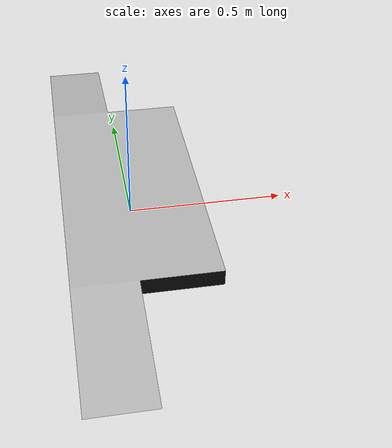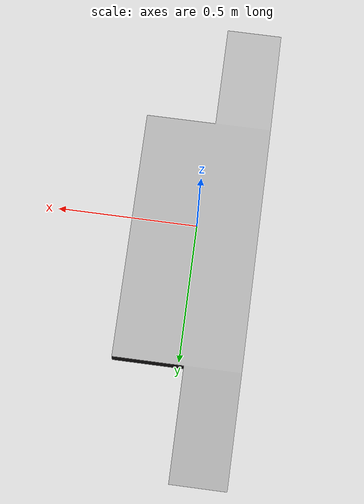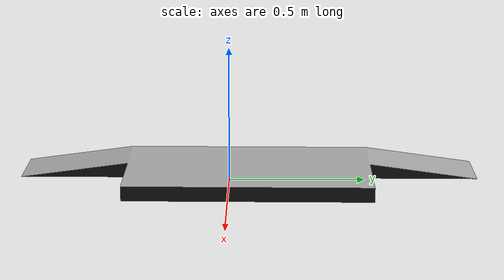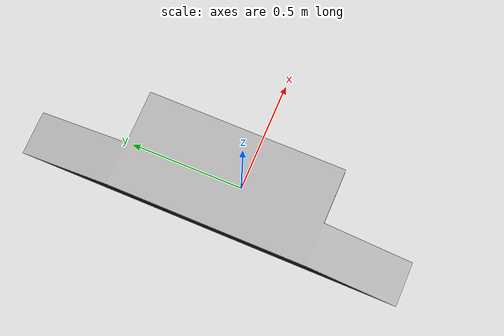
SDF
<?xml version='1.0'?>
<sdf version='1.7'>
  <model name='Stage'>
   	<static>true</static>
    <plugin filename="gz-sim-label-system" name="gz::sim::systems::Label">
        <label>11</label>
    </plugin>
    <link name='link_0'>
			<gravity>1</gravity>
      <inertial>
        <pose>0 0 0.02 0 0 0</pose>
        <mass>0.025</mass>
        <inertia>
          <ixx>2.5e-5</ixx>
          <ixy>0</ixy>
          <ixz>0</ixz>
          <iyy>2.5e-5</iyy>
          <iyz>0</iyz>
          <izz>8e-6</izz>
        </inertia>
      </inertial>
      <pose>0 0 0 0 0 0</pose>
      <visual name='visual'>
        <pose>0 0 0 0 -0 0</pose>
        <geometry>
          <mesh>
            <uri>meshes/stage.dae</uri>
            <scale>1.0 1.0 1.0</scale>
          </mesh>
        </geometry>
        <transparency>0</transparency>
        <cast_shadows>1</cast_shadows>
      </visual>

      <collision name='collision'>
        <laser_retro>0</laser_retro>
        <max_contacts>20</max_contacts>
        <pose>0 0 0.0545 0 -0 0</pose>
        <geometry>
          <cylinder>
            <radius>0.0365</radius>
            <length>0.109</length>
          </cylinder>
        </geometry>
        <surface>
          <friction>
            <ode>
              <mu>0.9</mu>
              <mu2>0.9</mu2>
            </ode>
          </friction>

          <contact>
            <ode>
              <soft_cfm>0</soft_cfm>
              <soft_erp>0.2</soft_erp>
              <kp>1e1</kp>
              <kd>1e9</kd>
              <max_vel>0.01</max_vel>
              <min_depth>0.001</min_depth>
            </ode>
          </contact>
        </surface>
      </collision>
    </link>
    <pose>0 0 0 0 0 0</pose>

    <allow_auto_disable>1</allow_auto_disable>
  </model>
</sdf>
